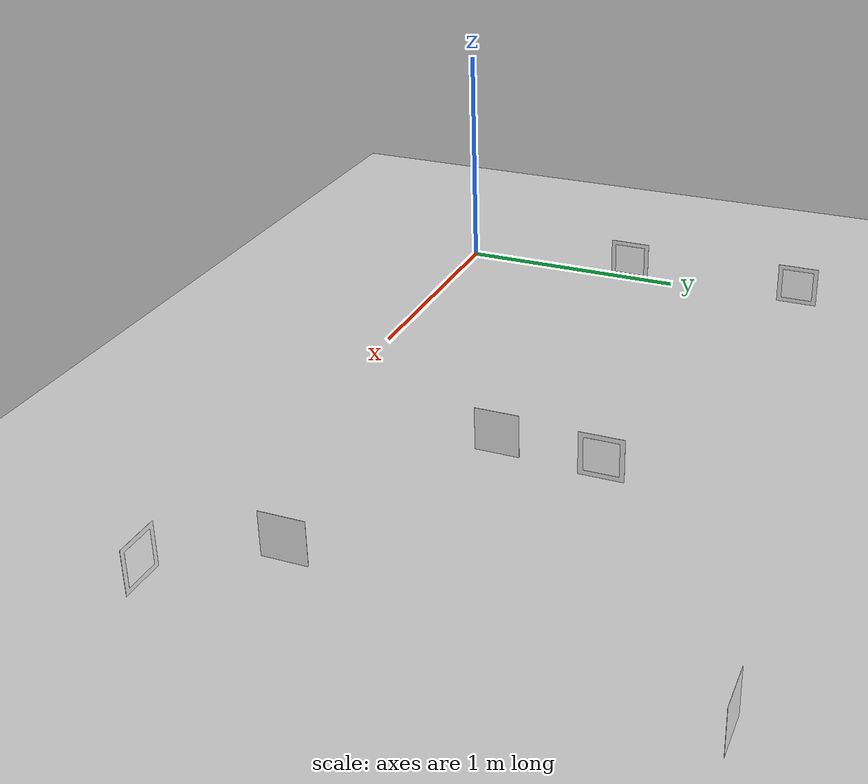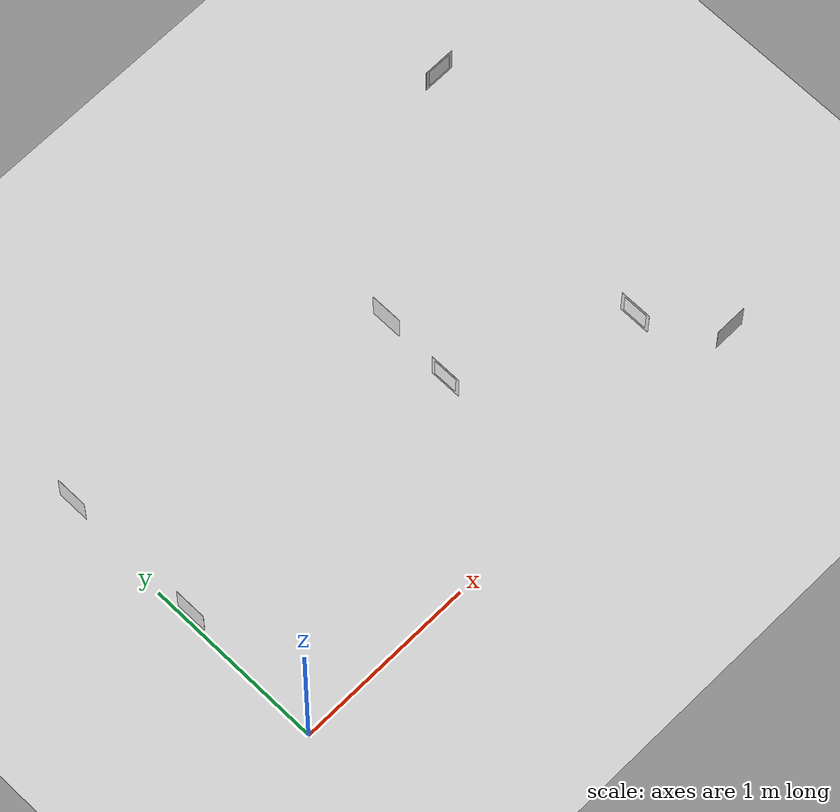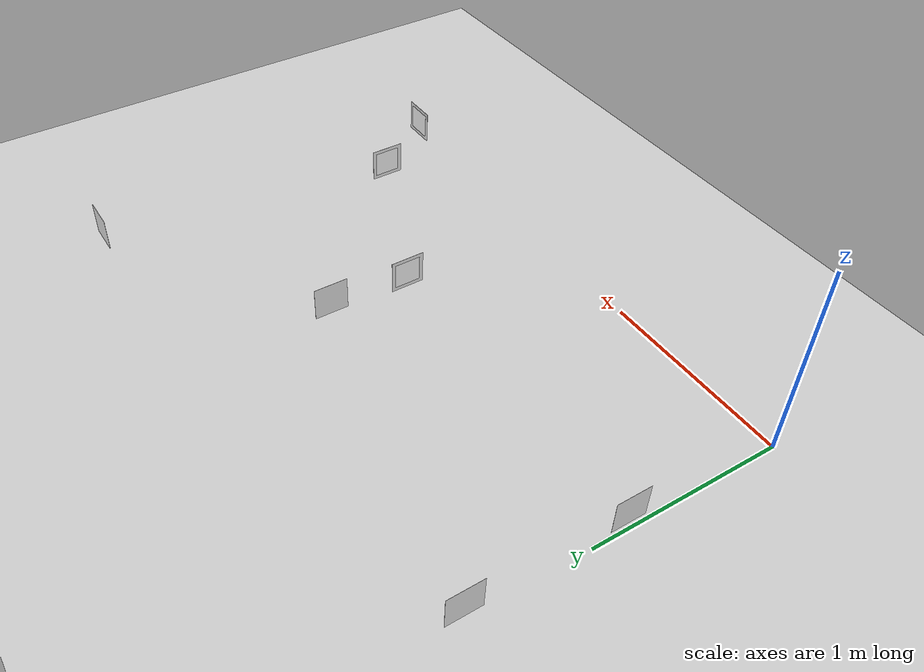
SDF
<sdf version="1.7">
 <world name="default">
  <light name="sun" type="directional">
   <pose>0 0 10 0 -0 0</pose>
   <diffuse>0.8 0.8 0.8 1</diffuse>
   <specular>0.2 0.2 0.2 1</specular>
   <attenuation>
    <range>1000</range>
    <constant>0.9</constant>
    <linear>0.01</linear>
    <quadratic>0.001</quadratic>
   </attenuation>
   <direction>-0.5 0.1 -0.9</direction>
   <spot><inner_angle>0</inner_angle><outer_angle>0</outer_angle><falloff>0</falloff></spot>
  </light>
  <model name="ground_plane">
   <static>1</static>
   <link name="link">
    <collision name="collision">
     <geometry><plane><normal>0 0 1</normal><size>100 100</size></plane></geometry>
     <surface>
      <contact><collide_bitmask>65535</collide_bitmask></contact>
      <friction><ode><mu>100</mu><mu2>50</mu2></ode></friction>
     </surface>
    </collision>
    <visual name="visual">
     <cast_shadows>0</cast_shadows>
     <geometry><plane><normal>0 0 1</normal><size>100 100</size></plane></geometry>
     <material>
      <script><uri>file://media/materials/scripts/gazebo.material</uri><name>Gazebo/Grey</name></script>
     </material>
    </visual>
   </link>
  </model>
  <gravity>0 0 -9.8</gravity>
  <magnetic_field>6e-06 2.3e-05 -4.2e-05</magnetic_field>
  <atmosphere type="adiabatic"/>
  <physics type="ode">
   <max_step_size>0.001</max_step_size>
   <real_time_factor>1</real_time_factor>
   <real_time_update_rate>1000</real_time_update_rate>
  </physics>
  <scene><ambient>0.4 0.4 0.4 1</ambient><background>0.7 0.7 0.7 1</background><shadows>1</shadows></scene>
  <include><uri>model://aruco_marker_702</uri><pose>0.02 0.8 0.1 0 0 0</pose></include>
  <include><uri>model://aruco_marker_701</uri><pose>0.02 1.6 0.1 0 0 0</pose></include>
  <include><uri>model://aruco_marker_703</uri><pose>1.71 0.8 0.1 0 0 3.14159</pose></include>
  <include><uri>model://aruco_marker_704</uri><pose>2.59 0.39 0.1 0 0 3.14159</pose></include>
  <include><uri>model://aruco_marker_705</uri><pose>2.85 0.01 0.1 0 0 1.5708</pose></include>
  <include><uri>model://aruco_marker_706</uri><pose>2.865 1.98 0.1 0 0 -1.5708</pose></include>
  <include><uri>model://aruco_marker_707</uri><pose>1.735 1.22 0.1 0 0 0</pose></include>
  <spherical_coordinates>
   <surface_model>EARTH_WGS84</surface_model>
   <latitude_deg>0</latitude_deg>
   <longitude_deg>0</longitude_deg>
   <elevation>0</elevation>
   <heading_deg>0</heading_deg>
  </spherical_coordinates>
 </world>
</sdf>

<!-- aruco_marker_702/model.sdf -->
<sdf version="1.5">
  <model name="aruco_marker_702">
    <pose>0 0 0 0 0 0</pose>
    <static>true</static>
    <link name="link">
      <inertial>
        <pose>0 0 0 0 -0 0</pose>
        <mass>0.281</mass>
        <inertia>
          <ixx>0.0006167</ixx>
          <ixy>0</ixy>
          <ixz>0</ixz>
          <iyy>0.0006167</iyy>
          <iyz>0</iyz>
          <izz>0.0006167</izz>
        </inertia>
      </inertial>
      <collision name="collision">
        <geometry>
          <box>
            <size>0.001 0.18 0.18</size>
          </box>
        </geometry>
        <surface>
          <contact>
            <ode>
              <max_vel>1</max_vel>
              <min_depth>0.001</min_depth>
              <kp>1000000</kp>
              <kd>10</kd>
            </ode>
          </contact>
          <friction>
            <ode>
              <mu>1</mu>
              <mu2>1</mu2>
            </ode>
          </friction>
        </surface>
      </collision>
      <visual name="box_visual">
        <cast_shadows>0</cast_shadows>
        <geometry>
          <box>
            <size>0.001 0.18 0.18</size>
          </box>
        </geometry>
        <material>
          <script>
            <uri>file://media/materials/scripts/gazebo.material</uri>
            <name>Gazebo/White</name>
          </script>
          <ambient>1 1 1 1</ambient>
          <diffuse>1 1 1 1</diffuse>
          <specular>0 0 0 1</specular>
          <emissive>0 0 0 1</emissive>
        </material>
      </visual>
      <visual name="aruco_visual_custom">
        <cast_shadows>0</cast_shadows>
        <pose>0.00065 0.0 0.0 1.5708 0.0 1.5708</pose>
        <geometry>
          <plane>
            <normal>0 0 1</normal>
            <size>0.14 0.14</size>
          </plane>
        </geometry>
        <material>
          <script>
            <!-- Ruta al archivo .material -->
            <uri>file:///home/ramon/.gazebo/models/aruco_marker_702/aruco_702.material</uri>
            <!-- Nombre del material dentro del archivo .material -->
            <name>custom_materials/aruco_marker_custom_material_702</name>
          </script>
          <ambient>1 1 1 1</ambient>
          <diffuse>1 1 1 1</diffuse>
          <specular>0 0 0 1</specular>
          <emissive>0 0 0 1</emissive>
        </material>
      </visual>
    </link>
  </model>
</sdf>

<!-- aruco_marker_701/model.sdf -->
<sdf version="1.5">
  <model name="aruco_marker_701">
    <pose>0 0 0 0 0 0</pose>
    <static>true</static>
    <link name="link">
      <inertial>
        <pose>0 0 0 0 -0 0</pose>
        <mass>0.281</mass>
        <inertia>
          <ixx>0.0006167</ixx>
          <ixy>0</ixy>
          <ixz>0</ixz>
          <iyy>0.0006167</iyy>
          <iyz>0</iyz>
          <izz>0.0006167</izz>
        </inertia>
      </inertial>
      <collision name="collision">
        <geometry>
          <box>
            <size>0.001 0.18 0.18</size>
          </box>
        </geometry>
        <surface>
          <contact>
            <ode>
              <max_vel>1</max_vel>
              <min_depth>0.001</min_depth>
              <kp>1000000</kp>
              <kd>10</kd>
            </ode>
          </contact>
          <friction>
            <ode>
              <mu>1</mu>
              <mu2>1</mu2>
            </ode>
          </friction>
        </surface>
      </collision>
      <visual name="box_visual">
        <cast_shadows>0</cast_shadows>
        <geometry>
          <box>
            <size>0.001 0.18 0.18</size>
          </box>
        </geometry>
        <material>
          <script>
            <uri>file://media/materials/scripts/gazebo.material</uri>
            <name>Gazebo/White</name>
          </script>
          <ambient>1 1 1 1</ambient>
          <diffuse>1 1 1 1</diffuse>
          <specular>0 0 0 1</specular>
          <emissive>0 0 0 1</emissive>
        </material>
      </visual>
      <visual name="aruco_visual_custom">
        <cast_shadows>0</cast_shadows>
        <pose>0.00065 0.0 0.0 1.5708 0.0 1.5708</pose>
        <geometry>
          <plane>
            <normal>0 0 1</normal>
            <size>0.14 0.14</size>
          </plane>
        </geometry>
        <material>
          <script>
            <!-- Ruta al archivo .material -->
            <uri>file:///home/ramon/.gazebo/models/aruco_marker_701/aruco_701.material</uri>
            <!-- Nombre del material dentro del archivo .material -->
            <name>custom_materials/aruco_marker_custom_material_701</name>
          </script>
          <ambient>1 1 1 1</ambient>
          <diffuse>1 1 1 1</diffuse>
          <specular>0 0 0 1</specular>
          <emissive>0 0 0 1</emissive>
        </material>
      </visual>
    </link>
  </model>
</sdf>

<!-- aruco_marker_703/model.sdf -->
<sdf version="1.5">
  <model name="aruco_marker_703">
    <pose>0 0 0 0 0 0</pose>
    <static>true</static>
    <link name="link">
      <inertial>
        <pose>0 0 0 0 -0 0</pose>
        <mass>0.281</mass>
        <inertia>
          <ixx>0.0006167</ixx>
          <ixy>0</ixy>
          <ixz>0</ixz>
          <iyy>0.0006167</iyy>
          <iyz>0</iyz>
          <izz>0.0006167</izz>
        </inertia>
      </inertial>
      <collision name="collision">
        <geometry>
          <box>
            <size>0.001 0.18 0.18</size>
          </box>
        </geometry>
        <surface>
          <contact>
            <ode>
              <max_vel>1</max_vel>
              <min_depth>0.001</min_depth>
              <kp>1000000</kp>
              <kd>10</kd>
            </ode>
          </contact>
          <friction>
            <ode>
              <mu>1</mu>
              <mu2>1</mu2>
            </ode>
          </friction>
        </surface>
      </collision>
      <visual name="box_visual">
        <cast_shadows>0</cast_shadows>
        <geometry>
          <box>
            <size>0.001 0.18 0.18</size>
          </box>
        </geometry>
        <material>
          <script>
            <uri>file://media/materials/scripts/gazebo.material</uri>
            <name>Gazebo/White</name>
          </script>
          <ambient>1 1 1 1</ambient>
          <diffuse>1 1 1 1</diffuse>
          <specular>0 0 0 1</specular>
          <emissive>0 0 0 1</emissive>
        </material>
      </visual>
      <visual name="aruco_visual_custom">
        <cast_shadows>0</cast_shadows>
        <pose>0.00065 0.0 0.0 1.5708 0.0 1.5708</pose>
        <geometry>
          <plane>
            <normal>0 0 1</normal>
            <size>0.14 0.14</size>
          </plane>
        </geometry>
        <material>
          <script>
            <!-- Ruta al archivo .material -->
            <uri>file:///home/ramon/.gazebo/models/aruco_marker_703/aruco_703.material</uri>
            <!-- Nombre del material dentro del archivo .material -->
            <name>custom_materials/aruco_marker_custom_material_703</name>
          </script>
          <ambient>1 1 1 1</ambient>
          <diffuse>1 1 1 1</diffuse>
          <specular>0 0 0 1</specular>
          <emissive>0 0 0 1</emissive>
        </material>
      </visual>
    </link>
  </model>
</sdf>

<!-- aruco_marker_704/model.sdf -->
<sdf version="1.5">
  <model name="aruco_marker_704">
    <pose>0 0 0 0 0 0</pose>
    <static>true</static>
    <link name="link">
      <inertial>
        <pose>0 0 0 0 -0 0</pose>
        <mass>0.281</mass>
        <inertia>
          <ixx>0.0006167</ixx>
          <ixy>0</ixy>
          <ixz>0</ixz>
          <iyy>0.0006167</iyy>
          <iyz>0</iyz>
          <izz>0.0006167</izz>
        </inertia>
      </inertial>
      <collision name="collision">
        <geometry>
          <box>
            <size>0.001 0.18 0.18</size>
          </box>
        </geometry>
        <surface>
          <contact>
            <ode>
              <max_vel>1</max_vel>
              <min_depth>0.001</min_depth>
              <kp>1000000</kp>
              <kd>10</kd>
            </ode>
          </contact>
          <friction>
            <ode>
              <mu>1</mu>
              <mu2>1</mu2>
            </ode>
          </friction>
        </surface>
      </collision>
      <visual name="box_visual">
        <cast_shadows>0</cast_shadows>
        <geometry>
          <box>
            <size>0.001 0.18 0.18</size>
          </box>
        </geometry>
        <material>
          <script>
            <uri>file://media/materials/scripts/gazebo.material</uri>
            <name>Gazebo/White</name>
          </script>
          <ambient>1 1 1 1</ambient>
          <diffuse>1 1 1 1</diffuse>
          <specular>0 0 0 1</specular>
          <emissive>0 0 0 1</emissive>
        </material>
      </visual>
      <visual name="aruco_visual_custom">
        <cast_shadows>0</cast_shadows>
        <pose>0.00065 0.0 0.0 1.5708 0.0 1.5708</pose>
        <geometry>
          <plane>
            <normal>0 0 1</normal>
            <size>0.14 0.14</size>
          </plane>
        </geometry>
        <material>
          <script>
            <!-- Ruta al archivo .material -->
            <uri>file:///home/ramon/.gazebo/models/aruco_marker_704/aruco_704.material</uri>
            <!-- Nombre del material dentro del archivo .material -->
            <name>custom_materials/aruco_marker_custom_material_704</name>
          </script>
          <ambient>1 1 1 1</ambient>
          <diffuse>1 1 1 1</diffuse>
          <specular>0 0 0 1</specular>
          <emissive>0 0 0 1</emissive>
        </material>
      </visual>
    </link>
  </model>
</sdf>

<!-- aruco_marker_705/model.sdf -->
<sdf version="1.5">
  <model name="aruco_marker_705">
    <pose>0 0 0 0 0 0</pose>
    <static>true</static>
    <link name="link">
      <inertial>
        <pose>0 0 0 0 -0 0</pose>
        <mass>0.281</mass>
        <inertia>
          <ixx>0.0006167</ixx>
          <ixy>0</ixy>
          <ixz>0</ixz>
          <iyy>0.0006167</iyy>
          <iyz>0</iyz>
          <izz>0.0006167</izz>
        </inertia>
      </inertial>
      <collision name="collision">
        <geometry>
          <box>
            <size>0.001 0.18 0.18</size>
          </box>
        </geometry>
        <surface>
          <contact>
            <ode>
              <max_vel>1</max_vel>
              <min_depth>0.001</min_depth>
              <kp>1000000</kp>
              <kd>10</kd>
            </ode>
          </contact>
          <friction>
            <ode>
              <mu>1</mu>
              <mu2>1</mu2>
            </ode>
          </friction>
        </surface>
      </collision>
      <visual name="box_visual">
        <cast_shadows>0</cast_shadows>
        <geometry>
          <box>
            <size>0.001 0.18 0.18</size>
          </box>
        </geometry>
        <material>
          <script>
            <uri>file://media/materials/scripts/gazebo.material</uri>
            <name>Gazebo/White</name>
          </script>
          <ambient>1 1 1 1</ambient>
          <diffuse>1 1 1 1</diffuse>
          <specular>0 0 0 1</specular>
          <emissive>0 0 0 1</emissive>
        </material>
      </visual>
      <visual name="aruco_visual_custom">
        <cast_shadows>0</cast_shadows>
        <pose>0.00065 0.0 0.0 1.5708 0.0 1.5708</pose>
        <geometry>
          <plane>
            <normal>0 0 1</normal>
            <size>0.14 0.14</size>
          </plane>
        </geometry>
        <material>
          <script>
            <!-- Ruta al archivo .material -->
            <uri>file:///home/ramon/.gazebo/models/aruco_marker_705/aruco_705.material</uri>
            <!-- Nombre del material dentro del archivo .material -->
            <name>custom_materials/aruco_marker_custom_material_705</name>
          </script>
          <ambient>1 1 1 1</ambient>
          <diffuse>1 1 1 1</diffuse>
          <specular>0 0 0 1</specular>
          <emissive>0 0 0 1</emissive>
        </material>
      </visual>
    </link>
  </model>
</sdf>

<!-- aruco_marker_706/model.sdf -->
<sdf version="1.5">
  <model name="aruco_marker_706">
    <pose>0 0 0 0 0 0</pose>
    <static>true</static>
    <link name="link">
      <inertial>
        <pose>0 0 0 0 -0 0</pose>
        <mass>0.281</mass>
        <inertia>
          <ixx>0.0006167</ixx>
          <ixy>0</ixy>
          <ixz>0</ixz>
          <iyy>0.0006167</iyy>
          <iyz>0</iyz>
          <izz>0.0006167</izz>
        </inertia>
      </inertial>
      <collision name="collision">
        <geometry>
          <box>
            <size>0.001 0.18 0.18</size>
          </box>
        </geometry>
        <surface>
          <contact>
            <ode>
              <max_vel>1</max_vel>
              <min_depth>0.001</min_depth>
              <kp>1000000</kp>
              <kd>10</kd>
            </ode>
          </contact>
          <friction>
            <ode>
              <mu>1</mu>
              <mu2>1</mu2>
            </ode>
          </friction>
        </surface>
      </collision>
      <visual name="box_visual">
        <cast_shadows>0</cast_shadows>
        <geometry>
          <box>
            <size>0.001 0.18 0.18</size>
          </box>
        </geometry>
        <material>
          <script>
            <uri>file://media/materials/scripts/gazebo.material</uri>
            <name>Gazebo/White</name>
          </script>
          <ambient>1 1 1 1</ambient>
          <diffuse>1 1 1 1</diffuse>
          <specular>0 0 0 1</specular>
          <emissive>0 0 0 1</emissive>
        </material>
      </visual>
      <visual name="aruco_visual_custom">
        <cast_shadows>0</cast_shadows>
        <pose>0.00065 0.0 0.0 1.5708 0.0 1.5708</pose>
        <geometry>
          <plane>
            <normal>0 0 1</normal>
            <size>0.14 0.14</size>
          </plane>
        </geometry>
        <material>
          <script>
            <!-- Ruta al archivo .material -->
            <uri>file:///home/ramon/.gazebo/models/aruco_marker_706/aruco_706.material</uri>
            <!-- Nombre del material dentro del archivo .material -->
            <name>custom_materials/aruco_marker_custom_material_706</name>
          </script>
          <ambient>1 1 1 1</ambient>
          <diffuse>1 1 1 1</diffuse>
          <specular>0 0 0 1</specular>
          <emissive>0 0 0 1</emissive>
        </material>
      </visual>
    </link>
  </model>
</sdf>

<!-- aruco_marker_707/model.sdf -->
<sdf version="1.5">
  <model name="aruco_marker_707">
    <pose>0 0 0 0 0 0</pose>
    <static>true</static>
    <link name="link">
      <inertial>
        <pose>0 0 0 0 -0 0</pose>
        <mass>0.281</mass>
        <inertia>
          <ixx>0.0006167</ixx>
          <ixy>0</ixy>
          <ixz>0</ixz>
          <iyy>0.0006167</iyy>
          <iyz>0</iyz>
          <izz>0.0006167</izz>
        </inertia>
      </inertial>
      <collision name="collision">
        <geometry>
          <box>
            <size>0.001 0.18 0.18</size>
          </box>
        </geometry>
        <surface>
          <contact>
            <ode>
              <max_vel>1</max_vel>
              <min_depth>0.001</min_depth>
              <kp>1000000</kp>
              <kd>10</kd>
            </ode>
          </contact>
          <friction>
            <ode>
              <mu>1</mu>
              <mu2>1</mu2>
            </ode>
          </friction>
        </surface>
      </collision>
      <visual name="box_visual">
        <cast_shadows>0</cast_shadows>
        <geometry>
          <box>
            <size>0.001 0.18 0.18</size>
          </box>
        </geometry>
        <material>
          <script>
            <uri>file://media/materials/scripts/gazebo.material</uri>
            <name>Gazebo/White</name>
          </script>
          <ambient>1 1 1 1</ambient>
          <diffuse>1 1 1 1</diffuse>
          <specular>0 0 0 1</specular>
          <emissive>0 0 0 1</emissive>
        </material>
      </visual>
      <visual name="aruco_visual_custom">
        <cast_shadows>0</cast_shadows>
        <pose>0.00065 0.0 0.0 1.5708 0.0 1.5708</pose>
        <geometry>
          <plane>
            <normal>0 0 1</normal>
            <size>0.14 0.14</size>
          </plane>
        </geometry>
        <material>
          <script>
            <!-- Ruta al archivo .material -->
            <uri>file:///home/ramon/.gazebo/models/aruco_marker_707/aruco_707.material</uri>
            <!-- Nombre del material dentro del archivo .material -->
            <name>custom_materials/aruco_marker_custom_material_707</name>
          </script>
          <ambient>1 1 1 1</ambient>
          <diffuse>1 1 1 1</diffuse>
          <specular>0 0 0 1</specular>
          <emissive>0 0 0 1</emissive>
        </material>
      </visual>
    </link>
  </model>
</sdf>
